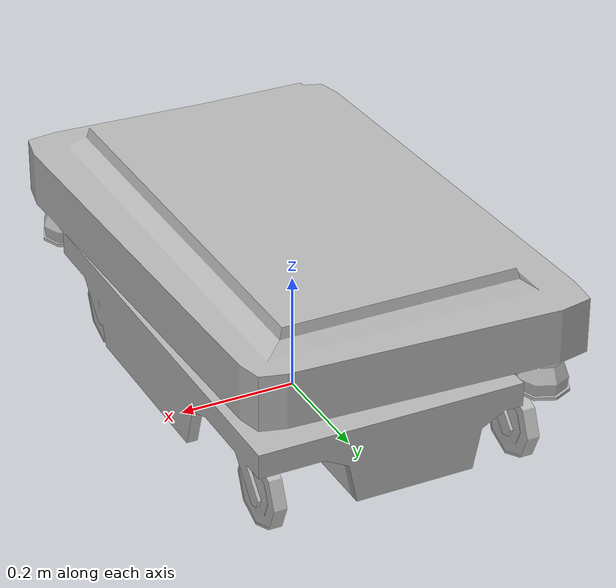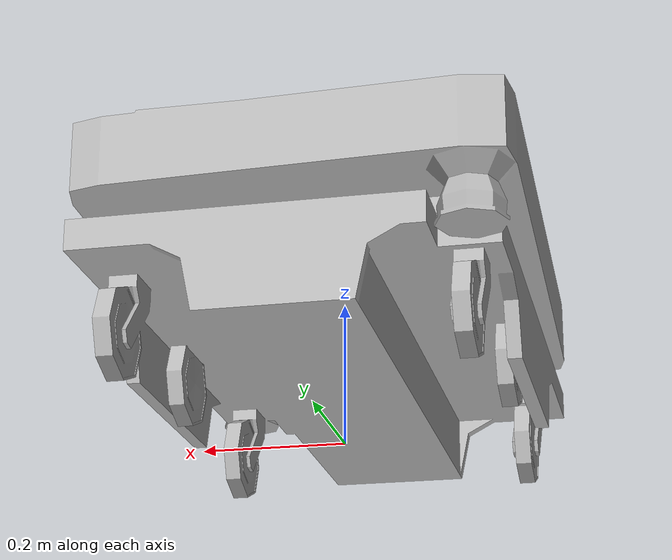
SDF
<?xml version="1.0"?>

<sdf version="1.6">
  <model name='MiR100'>

    <link name="body">
      <pose>0 0 0 0 0 0</pose>

      <inertial>
        <pose>0 0 0.43294142 0 0 0</pose>
        <mass>244.816489</mass>
        <inertia>
          <ixx>26.0429852</ixx>
          <iyy>29.0695006</iyy>
          <izz>23.0523441</izz>
        </inertia>
      </inertial>

      <visual name="body">
        <geometry>
          <mesh><uri>model://MiR100/meshes/body.obj</uri></mesh>
        </geometry>
      </visual>
      <collision name="body">
        <geometry>
          <mesh><uri>model://MiR100/meshes/body.obj</uri></mesh>
        </geometry>
      </collision>

      <visual name="WheelLeftFront">
        <pose>-0.220 -0.262 0.061 0 0 0</pose>
        <geometry>
          <mesh>
            <uri>model://MiR100/meshes/WheelMain.obj</uri>
          </mesh>
        </geometry>
      </visual>
      <collision name="front_caster_left">
        <pose>-.25 -.27 0.05 0 0 0</pose>
        <geometry>
          <sphere><radius>0.05</radius></sphere>
        </geometry>
        <surface>
          <friction>
            <torsional>
              <coefficient>0.0</coefficient>
            </torsional>
            <ode>
              <mu>0.0</mu>
              <mu2>0.0</mu2>
            </ode>
            <bullet>
              <friction>0.0</friction>
              <friction2>0.0</friction2>
              <rolling_friction>0.0</rolling_friction>
            </bullet>
          </friction>
        </surface>
      </collision>

      <visual name="WheelLeftBack">
        <pose>-0.220 0.334 0.061 0 0 0</pose>
        <geometry>
          <mesh>
            <uri>model://MiR100/meshes/WheelMain.obj</uri>
          </mesh>
        </geometry>
      </visual>
      <collision name="back_caster_left">
        <pose>-.25 .34 0.05 0 0 0</pose>
        <geometry>
          <sphere><radius>0.05</radius></sphere>
        </geometry>
        <surface>
          <friction>
            <torsional>
              <coefficient>0.0</coefficient>
            </torsional>
            <ode>
              <mu>0.0</mu>
              <mu2>0.0</mu2>
            </ode>
            <bullet>
              <friction>0.0</friction>
              <friction2>0.0</friction2>
              <rolling_friction>0.0</rolling_friction>
            </bullet>
          </friction>
        </surface>
      </collision>

      <visual name="WheelRightFront">
        <pose>0.217 -0.262 0.061 0 0 0</pose>
        <geometry>
          <mesh>
            <uri>model://MiR100/meshes/WheelMain.obj</uri>
          </mesh>
        </geometry>
      </visual>
      <collision name="front_caster_right">
        <pose>.25 -.27 0.05 0 0 0</pose>
        <geometry>
          <sphere><radius>0.05</radius></sphere>
        </geometry>
        <surface>
          <friction>
            <torsional>
              <coefficient>0.0</coefficient>
            </torsional>
            <ode>
              <mu>0.0</mu>
              <mu2>0.0</mu2>
            </ode>
            <bullet>
              <friction>0.0</friction>
              <friction2>0.0</friction2>
              <rolling_friction>0.0</rolling_friction>
            </bullet>
          </friction>
        </surface>
      </collision>

      <visual name="WheelRightBack">
        <pose>0.217 0.334 0.061 0 0 0</pose>
        <geometry>
          <mesh>
            <uri>model://MiR100/meshes/WheelMain.obj</uri>
          </mesh>
        </geometry>
      </visual>
      <collision name="back_caster_right">
        <pose>.25 .34 0.05 0 0 0</pose>
        <geometry>
          <sphere><radius>0.05</radius></sphere>
        </geometry>
        <surface>
          <friction>
            <torsional>
              <coefficient>0.0</coefficient>
            </torsional>
            <ode>
              <mu>0.0</mu>
              <mu2>0.0</mu2>
            </ode>
            <bullet>
              <friction>0.0</friction>
              <friction2>0.0</friction2>
              <rolling_friction>0.0</rolling_friction>
            </bullet>
          </friction>
        </surface>
      </collision>
    </link>

    <link name="suspension_tire_left">
      <!-- This is a dummy link that's used to connect a suspension (prismatic
           joint) to the tire axis (revolute joint) -->
      <pose>-0.26 0 0.10 0 0 0</pose>
      <inertial>
        <mass>1.00</mass>
        <inertia>
          <ixx>1.00</ixx>
          <iyy>1.00</iyy>
          <izz>1.00</izz>
        </inertia>
      </inertial>
    </link>

    <joint name="joint_suspension_tire_left" type="prismatic">
      <parent>body</parent>
      <child>suspension_tire_left</child>
      <axis>
        <xyz>0 0 1</xyz>
        <dynamics>
          <damping>500</damping>
          <spring_reference>-0.09</spring_reference>
          <spring_stiffness>2000</spring_stiffness>
        </dynamics>
      </axis>
      <physics>
        <ode>
          <implicit_spring_damper>true</implicit_spring_damper>
        </ode>
      </physics>
    </joint>

    <link name="tire_left">
      <pose>-0.26 0 0.10 0 0 0</pose>

      <inertial>
        <pose>0 0 0 0 0 0</pose>
        <mass>5.0</mass>
        <inertia>
          <ixx>1.302975553365</ixx>
          <iyy>0.757897446874</iyy>
          <izz>0.757897446874</izz>
        </inertia>
      </inertial>

      <visual name="WheelSideLeft">
        <pose>0.032 0.0 0.0 0 0 0</pose>
        <geometry>
          <mesh>
            <uri>model://MiR100/meshes/WheelSide.obj</uri>
          </mesh>
        </geometry>
      </visual>
      <collision name="tire_left">
        <geometry>
          <sphere><radius>0.06137</radius></sphere>
        </geometry>
        <surface>
          <contact>
            <ode>
              <kp>10000000.0</kp>
              <kd>1.0</kd>
            </ode>
          </contact>
        </surface>
      </collision>
    </link>

    <joint name="joint_tire_left" type="revolute">
      <parent>suspension_tire_left</parent>
      <child>tire_left</child>
      <axis>
        <xyz>-1 0 0</xyz>
      </axis>
    </joint>

    <link name="suspension_tire_right">
      <!-- This is a dummy link that's used to connect a suspension (prismatic
           joint) to the tire axis (revolute joint) -->
      <pose>0.26 0 0.10 0 0 0</pose>
      <inertial>
        <mass>1.00</mass>
        <inertia>
          <ixx>1.00</ixx>
          <iyy>1.00</iyy>
          <izz>1.00</izz>
        </inertia>
      </inertial>
    </link>

    <joint name="joint_suspension_tire_right" type="prismatic">
      <parent>body</parent>
      <child>suspension_tire_right</child>
      <axis>
        <xyz>0 0 1</xyz>
        <dynamics>
          <damping>500</damping>
          <spring_reference>-0.09</spring_reference>
          <spring_stiffness>2000</spring_stiffness>
        </dynamics>
      </axis>
      <physics>
        <ode>
          <implicit_spring_damper>true</implicit_spring_damper>
        </ode>
      </physics>
    </joint>

    <link name="tire_right">
      <pose>0.26 0 0.10 0 0 0</pose>

      <inertial>
        <pose>0 0 0 0 0 0</pose>
        <mass>5.0</mass>
        <inertia>
          <ixx>1.302975553365</ixx>
          <iyy>0.757897446874</iyy>
          <izz>0.757897446874</izz>
        </inertia>
      </inertial>

      <visual name="WheelSideRight">
        <pose>-0.032 0.0 0.0 0 0 0</pose>
        <geometry>
          <mesh>
            <uri>model://MiR100/meshes/WheelSide.obj</uri>
          </mesh>
        </geometry>
      </visual>
      <collision name="tire_right">
        <geometry>
          <sphere><radius>0.06137</radius></sphere>
        </geometry>
        <surface>
          <contact>
            <ode>
              <kp>10000000.0</kp>
              <kd>1.0</kd>
            </ode>
          </contact>
        </surface>
      </collision>
    </link>

    <joint name="joint_tire_right" type="revolute">
      <parent>suspension_tire_right</parent>
      <child>tire_right</child>
      <axis>
        <xyz>-1 0 0</xyz>
      </axis>
    </joint>

  </model>
</sdf>
